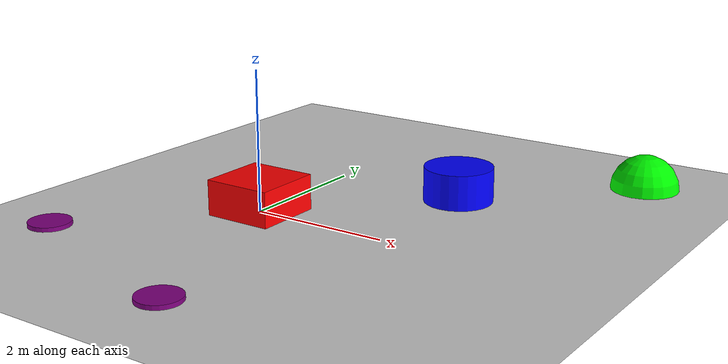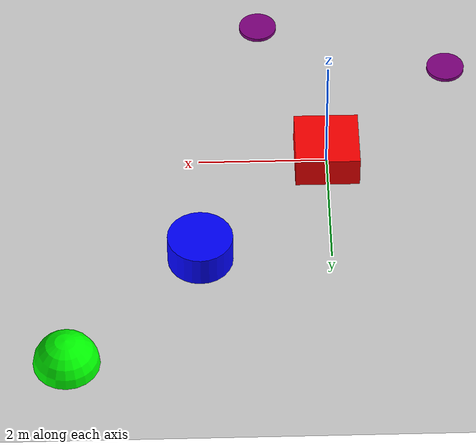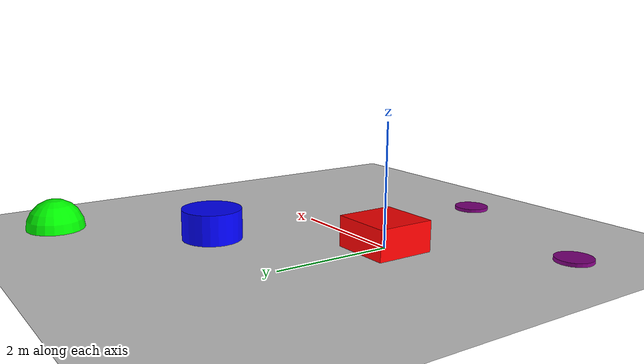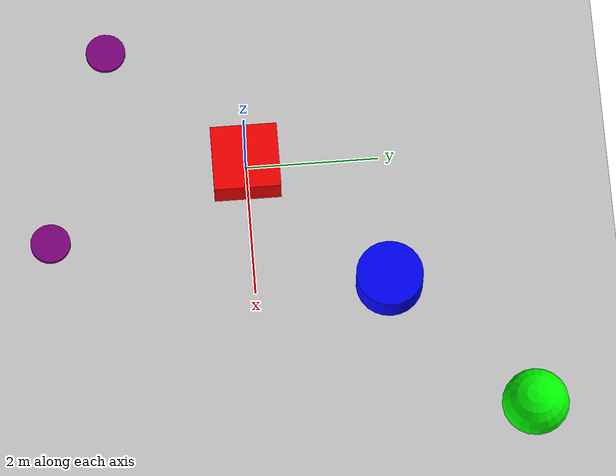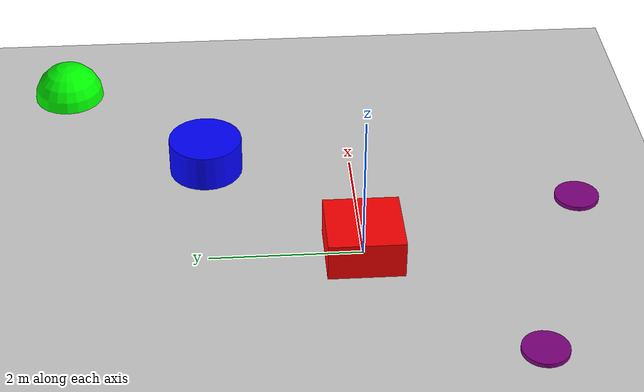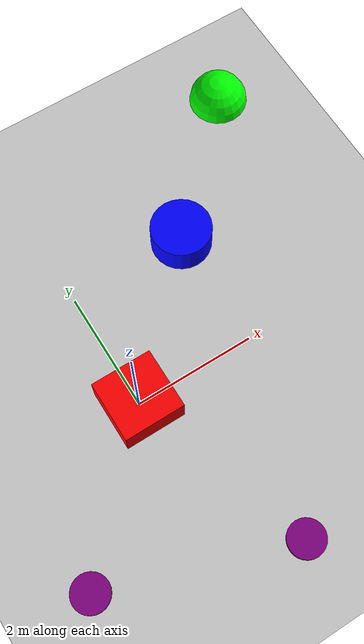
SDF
<?xml version="1.0" ?>
<sdf version="1.6">
  <world name="default">
    <include>
      <uri>model://ground_plane</uri>
    </include>
    <include>
      <uri>model://sun</uri>
    </include>

    <!-- Red object -->
    <model name="red_object">
      <pose>0 0 0 0 0 0</pose>
      <link name="link">
        <visual name="visual">
          <geometry>
            <box>
              <size>1 1 1</size>
            </box>
          </geometry>
          <material>
            <ambient>1 0 0 1</ambient>
            <diffuse>1 0 0 1</diffuse>
          </material>
        </visual>
      </link>
    </model>

    <!-- Blue object -->
    <model name="blue_object">
      <pose>2 2 0 0 0 0</pose>
      <link name="link">
        <visual name="visual">
          <geometry>
            <cylinder>
              <radius>0.5</radius>
              <length>1</length>
            </cylinder>
          </geometry>
          <material>
            <ambient>0 0 1 1</ambient>
            <diffuse>0 0 1 1</diffuse>
          </material>
        </visual>
      </link>
    </model>

    <!-- Green object -->
    <model name="green_object">
      <pose>4 4 0 0 0 0</pose>
      <link name="link">
        <visual name="visual">
          <geometry>
            <sphere>
              <radius>0.5</radius>
            </sphere>
          </geometry>
          <material>
            <ambient>0 1 0 1</ambient>
            <diffuse>0 1 0 1</diffuse>
          </material>
        </visual>
      </link>
    </model>

    <!-- Purple circles -->
    <model name="purple_circle_1">
      <pose>-2 -2 0 0 0 0</pose>
      <link name="link">
        <visual name="visual">
          <geometry>
            <cylinder>
              <radius>0.3</radius>
              <length>0.1</length>
            </cylinder>
          </geometry>
          <material>
            <ambient>0.5 0 0.5 1</ambient>
            <diffuse>0.5 0 0.5 1</diffuse>
          </material>
        </visual>
      </link>
    </model>

    <model name="purple_circle_2">
      <pose>1 -3 0 0 0 0</pose>
      <link name="link">
        <visual name="visual">
          <geometry>
            <cylinder>
              <radius>0.3</radius>
              <length>0.1</length>
            </cylinder>
          </geometry>
          <material>
            <ambient>0.5 0 0.5 1</ambient>
            <diffuse>0.5 0 0.5 1</diffuse>
          </material>
        </visual>
      </link>
    </model>

    <!-- Add more purple circles as needed -->

  </world>
</sdf>
